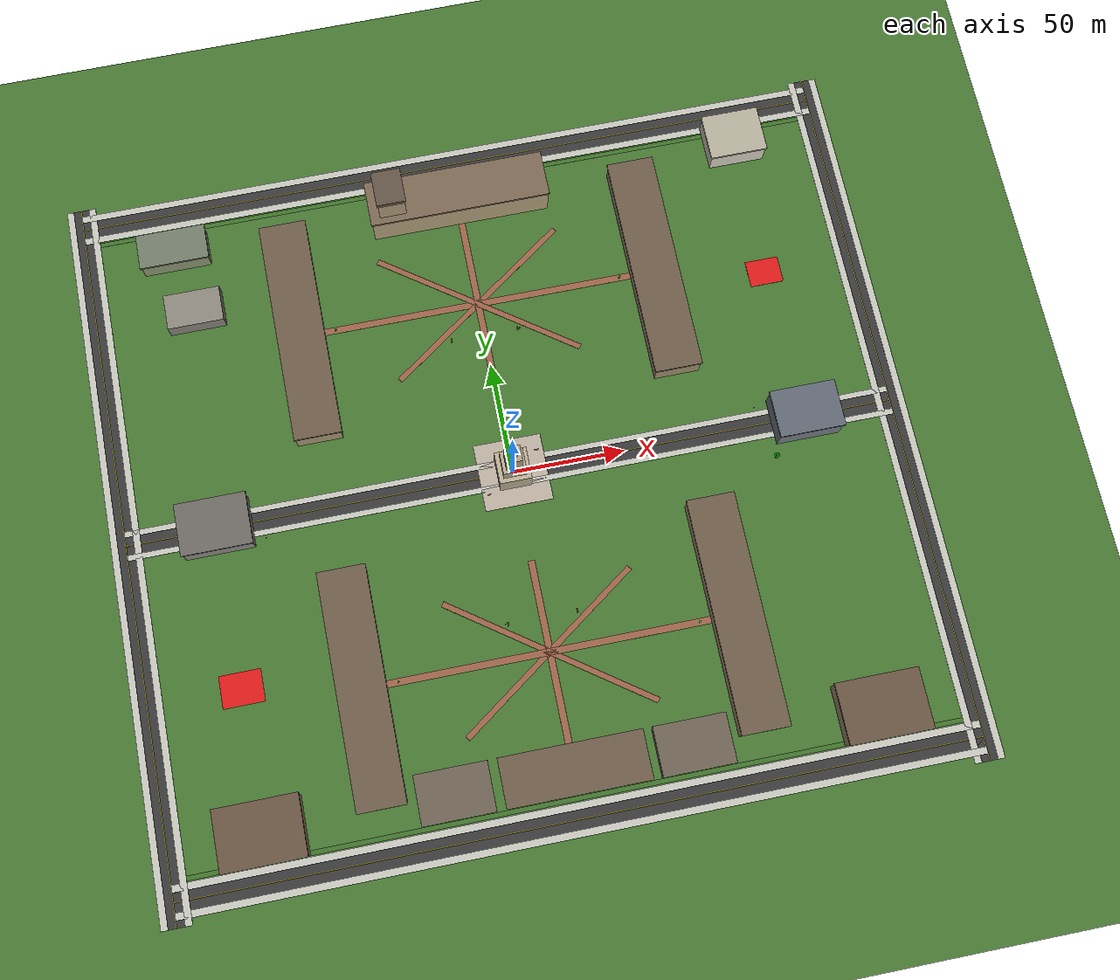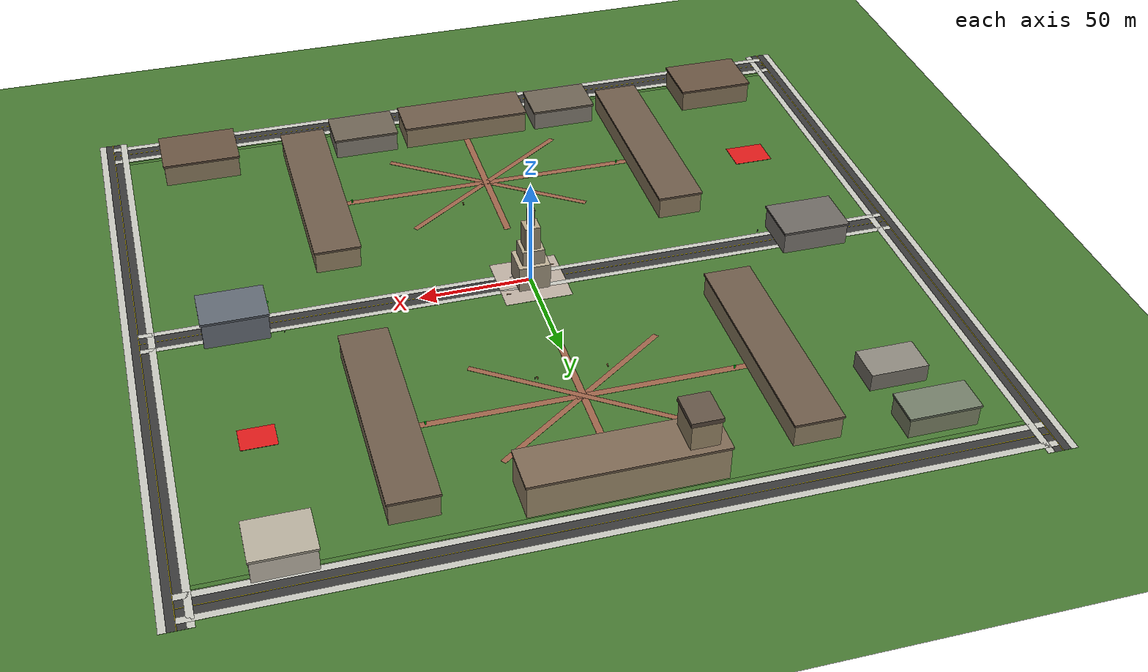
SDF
<sdf version="1.8">
 <world name="yale_campus">
  <plugin filename="gz-sim-physics-system" name="gz::sim::systems::Physics"/>
  <plugin filename="gz-sim-sensors-system" name="gz::sim::systems::Sensors">
   <render_engine>ogre2</render_engine>
  </plugin>
  <plugin filename="gz-sim-scene-broadcaster-system" name="gz::sim::systems::SceneBroadcaster"/>
  <plugin filename="gz-sim-user-commands-system" name="gz::sim::systems::UserCommands"/>
  <physics type="ode">
   <real_time_update_rate>1000.0</real_time_update_rate>
   <max_step_size>0.001</max_step_size>
   <real_time_factor>1</real_time_factor>
  </physics>
  <light type="directional" name="sun">
   <pose>0 0 100 0 0 0</pose>
   <diffuse>0.9 0.9 0.85 1</diffuse>
   <specular>0.3 0.3 0.3 1</specular>
   <attenuation>
    <range>1000</range>
    <constant>0.9</constant>
    <linear>0.01</linear>
    <quadratic>0.001</quadratic>
   </attenuation>
   <direction>-0.5 0.1 -0.9</direction>
  </light>
  <light type="directional" name="fill">
   <cast_shadows>false</cast_shadows>
   <pose>0 0 50 0 0 0</pose>
   <diffuse>0.35 0.38 0.45 1</diffuse>
   <specular>0 0 0 1</specular>
   <direction>0.5 -0.1 -0.5</direction>
  </light>
  <model name="ground_plane">
   <static>true</static>
   <link name="link">
    <collision name="c">
     <geometry><plane><normal>0 0 1</normal><size>500 500</size></plane></geometry>
     <surface><friction><ode><mu>0.8</mu><mu2>0.8</mu2></ode></friction></surface>
    </collision>
    <visual name="v">
     <geometry><plane><normal>0 0 1</normal><size>500 500</size></plane></geometry>
     <material><ambient>0.24 0.42 0.17 1</ambient><diffuse>0.27 0.46 0.19 1</diffuse></material>
    </visual>
   </link>
  </model>
  <model name="road_elm_st">
   <static>true</static>
   <link name="link">
    <collision name="c">
     <geometry><box><size>340 10 0.05</size></box></geometry>
     <surface>
      <friction><ode><mu>1.0</mu><mu2>1.0</mu2></ode></friction>
      <contact><ode><kp>1e8</kp><kd>10.0</kd></ode></contact>
     </surface>
    </collision>
    <visual name="v">
     <geometry><box><size>340 10 0.05</size></box></geometry>
     <material><ambient>0.20 0.20 0.20 1</ambient><diffuse>0.22 0.22 0.22 1</diffuse></material>
    </visual>
   </link>
   <pose>0 150 0.025 0 0 0</pose>
  </model>
  <model name="stripe_elm">
   <static>true</static>
   <link name="link">
    <visual name="v">
     <geometry><box><size>340 0.25 0.01</size></box></geometry>
     <material><ambient>0.95 0.85 0.0 1</ambient><diffuse>0.95 0.85 0.0 1</diffuse></material>
    </visual>
   </link>
   <pose>0 150 0.055 0 0 0</pose>
  </model>
  <model name="sw_elm_s">
   <static>true</static>
   <link name="link">
    <collision name="c">
     <geometry><box><size>340 3 0.08</size></box></geometry>
     <surface>
      <friction><ode><mu>1.0</mu><mu2>1.0</mu2></ode></friction>
      <contact><ode><kp>1e8</kp><kd>10.0</kd></ode></contact>
     </surface>
    </collision>
    <visual name="v">
     <geometry><box><size>340 3 0.08</size></box></geometry>
     <material><ambient>0.76 0.76 0.73 1</ambient><diffuse>0.76 0.76 0.73 1</diffuse></material>
    </visual>
   </link>
   <pose>0 144.5 0.04 0 0 0</pose>
  </model>
  <model name="sw_elm_n">
   <static>true</static>
   <link name="link">
    <collision name="c">
     <geometry><box><size>340 3 0.08</size></box></geometry>
     <surface>
      <friction><ode><mu>1.0</mu><mu2>1.0</mu2></ode></friction>
      <contact><ode><kp>1e8</kp><kd>10.0</kd></ode></contact>
     </surface>
    </collision>
    <visual name="v">
     <geometry><box><size>340 3 0.08</size></box></geometry>
     <material><ambient>0.76 0.76 0.73 1</ambient><diffuse>0.76 0.76 0.73 1</diffuse></material>
    </visual>
   </link>
   <pose>0 155.5 0.04 0 0 0</pose>
  </model>
  <model name="verge_elm_s">
   <static>true</static>
   <link name="link">
    <visual name="v">
     <geometry><box><size>340 2 0.01</size></box></geometry>
     <material><ambient>0.22 0.40 0.15 1</ambient><diffuse>0.25 0.44 0.17 1</diffuse></material>
    </visual>
   </link>
   <pose>0 141.5 0.005 0 0 0</pose>
  </model>
  <model name="road_chapel_st">
   <static>true</static>
   <link name="link">
    <collision name="c">
     <geometry><box><size>340 10 0.05</size></box></geometry>
     <surface>
      <friction><ode><mu>1.0</mu><mu2>1.0</mu2></ode></friction>
      <contact><ode><kp>1e8</kp><kd>10.0</kd></ode></contact>
     </surface>
    </collision>
    <visual name="v">
     <geometry><box><size>340 10 0.05</size></box></geometry>
     <material><ambient>0.20 0.20 0.20 1</ambient><diffuse>0.22 0.22 0.22 1</diffuse></material>
    </visual>
   </link>
   <pose>0 -150 0.025 0 0 0</pose>
  </model>
  <model name="stripe_chapel">
   <static>true</static>
   <link name="link">
    <visual name="v">
     <geometry><box><size>340 0.25 0.01</size></box></geometry>
     <material><ambient>0.95 0.85 0.0 1</ambient><diffuse>0.95 0.85 0.0 1</diffuse></material>
    </visual>
   </link>
   <pose>0 -150 0.055 0 0 0</pose>
  </model>
  <model name="sw_chapel_n">
   <static>true</static>
   <link name="link">
    <collision name="c">
     <geometry><box><size>340 3 0.08</size></box></geometry>
     <surface>
      <friction><ode><mu>1.0</mu><mu2>1.0</mu2></ode></friction>
      <contact><ode><kp>1e8</kp><kd>10.0</kd></ode></contact>
     </surface>
    </collision>
    <visual name="v">
     <geometry><box><size>340 3 0.08</size></box></geometry>
     <material><ambient>0.76 0.76 0.73 1</ambient><diffuse>0.76 0.76 0.73 1</diffuse></material>
    </visual>
   </link>
   <pose>0 -144.5 0.04 0 0 0</pose>
  </model>
  <model name="sw_chapel_s">
   <static>true</static>
   <link name="link">
    <collision name="c">
     <geometry><box><size>340 3 0.08</size></box></geometry>
     <surface>
      <friction><ode><mu>1.0</mu><mu2>1.0</mu2></ode></friction>
      <contact><ode><kp>1e8</kp><kd>10.0</kd></ode></contact>
     </surface>
    </collision>
    <visual name="v">
     <geometry><box><size>340 3 0.08</size></box></geometry>
     <material><ambient>0.76 0.76 0.73 1</ambient><diffuse>0.76 0.76 0.73 1</diffuse></material>
    </visual>
   </link>
   <pose>0 -155.5 0.04 0 0 0</pose>
  </model>
  <model name="verge_chapel_n">
   <static>true</static>
   <link name="link">
    <visual name="v">
     <geometry><box><size>340 2 0.01</size></box></geometry>
     <material><ambient>0.22 0.40 0.15 1</ambient><diffuse>0.25 0.44 0.17 1</diffuse></material>
    </visual>
   </link>
   <pose>0 -141.5 0.005 0 0 0</pose>
  </model>
  <model name="road_york_st">
   <static>true</static>
   <link name="link">
    <collision name="c">
     <geometry><box><size>9 320 0.05</size></box></geometry>
     <surface>
      <friction><ode><mu>1.0</mu><mu2>1.0</mu2></ode></friction>
      <contact><ode><kp>1e8</kp><kd>10.0</kd></ode></contact>
     </surface>
    </collision>
    <visual name="v">
     <geometry><box><size>9 320 0.05</size></box></geometry>
     <material><ambient>0.20 0.20 0.20 1</ambient><diffuse>0.22 0.22 0.22 1</diffuse></material>
    </visual>
   </link>
   <pose>-170 0 0.025 0 0 0</pose>
  </model>
  <model name="stripe_york">
   <static>true</static>
   <link name="link">
    <visual name="v">
     <geometry><box><size>0.25 320 0.01</size></box></geometry>
     <material><ambient>0.95 0.85 0.0 1</ambient><diffuse>0.95 0.85 0.0 1</diffuse></material>
    </visual>
   </link>
   <pose>-170 0 0.055 0 0 0</pose>
  </model>
  <model name="sw_york_e">
   <static>true</static>
   <link name="link">
    <collision name="c">
     <geometry><box><size>3 320 0.08</size></box></geometry>
     <surface>
      <friction><ode><mu>1.0</mu><mu2>1.0</mu2></ode></friction>
      <contact><ode><kp>1e8</kp><kd>10.0</kd></ode></contact>
     </surface>
    </collision>
    <visual name="v">
     <geometry><box><size>3 320 0.08</size></box></geometry>
     <material><ambient>0.76 0.76 0.73 1</ambient><diffuse>0.76 0.76 0.73 1</diffuse></material>
    </visual>
   </link>
   <pose>-165 0 0.04 0 0 0</pose>
  </model>
  <model name="sw_york_w">
   <static>true</static>
   <link name="link">
    <collision name="c">
     <geometry><box><size>3 320 0.08</size></box></geometry>
     <surface>
      <friction><ode><mu>1.0</mu><mu2>1.0</mu2></ode></friction>
      <contact><ode><kp>1e8</kp><kd>10.0</kd></ode></contact>
     </surface>
    </collision>
    <visual name="v">
     <geometry><box><size>3 320 0.08</size></box></geometry>
     <material><ambient>0.76 0.76 0.73 1</ambient><diffuse>0.76 0.76 0.73 1</diffuse></material>
    </visual>
   </link>
   <pose>-175 0 0.04 0 0 0</pose>
  </model>
  <model name="road_grove_st">
   <static>true</static>
   <link name="link">
    <collision name="c">
     <geometry><box><size>9 320 0.05</size></box></geometry>
     <surface>
      <friction><ode><mu>1.0</mu><mu2>1.0</mu2></ode></friction>
      <contact><ode><kp>1e8</kp><kd>10.0</kd></ode></contact>
     </surface>
    </collision>
    <visual name="v">
     <geometry><box><size>9 320 0.05</size></box></geometry>
     <material><ambient>0.20 0.20 0.20 1</ambient><diffuse>0.22 0.22 0.22 1</diffuse></material>
    </visual>
   </link>
   <pose>170 0 0.025 0 0 0</pose>
  </model>
  <model name="stripe_grove">
   <static>true</static>
   <link name="link">
    <visual name="v">
     <geometry><box><size>0.25 320 0.01</size></box></geometry>
     <material><ambient>0.95 0.85 0.0 1</ambient><diffuse>0.95 0.85 0.0 1</diffuse></material>
    </visual>
   </link>
   <pose>170 0 0.055 0 0 0</pose>
  </model>
  <model name="sw_grove_w">
   <static>true</static>
   <link name="link">
    <collision name="c">
     <geometry><box><size>3 320 0.08</size></box></geometry>
     <surface>
      <friction><ode><mu>1.0</mu><mu2>1.0</mu2></ode></friction>
      <contact><ode><kp>1e8</kp><kd>10.0</kd></ode></contact>
     </surface>
    </collision>
    <visual name="v">
     <geometry><box><size>3 320 0.08</size></box></geometry>
     <material><ambient>0.76 0.76 0.73 1</ambient><diffuse>0.76 0.76 0.73 1</diffuse></material>
    </visual>
   </link>
   <pose>165 0 0.04 0 0 0</pose>
  </model>
  <model name="sw_grove_e">
   <static>true</static>
   <link name="link">
    <collision name="c">
     <geometry><box><size>3 320 0.08</size></box></geometry>
     <surface>
      <friction><ode><mu>1.0</mu><mu2>1.0</mu2></ode></friction>
      <contact><ode><kp>1e8</kp><kd>10.0</kd></ode></contact>
     </surface>
    </collision>
    <visual name="v">
     <geometry><box><size>3 320 0.08</size></box></geometry>
     <material><ambient>0.76 0.76 0.73 1</ambient><diffuse>0.76 0.76 0.73 1</diffuse></material>
    </visual>
   </link>
   <pose>175 0 0.04 0 0 0</pose>
  </model>
  <model name="road_cross_campus">
   <static>true</static>
   <link name="link">
    <collision name="c">
     <geometry><box><size>340 8 0.05</size></box></geometry>
     <surface>
      <friction><ode><mu>1.0</mu><mu2>1.0</mu2></ode></friction>
      <contact><ode><kp>1e8</kp><kd>10.0</kd></ode></contact>
     </surface>
    </collision>
    <visual name="v">
     <geometry><box><size>340 8 0.05</size></box></geometry>
     <material><ambient>0.20 0.20 0.20 1</ambient><diffuse>0.22 0.22 0.22 1</diffuse></material>
    </visual>
   </link>
   <pose>0 0 0.025 0 0 0</pose>
  </model>
  <model name="stripe_cross">
   <static>true</static>
   <link name="link">
    <visual name="v">
     <geometry><box><size>340 0.25 0.01</size></box></geometry>
     <material><ambient>0.95 0.85 0.0 1</ambient><diffuse>0.95 0.85 0.0 1</diffuse></material>
    </visual>
   </link>
   <pose>0 0 0.055 0 0 0</pose>
  </model>
  <model name="sw_cross_n">
   <static>true</static>
   <link name="link">
    <collision name="c">
     <geometry><box><size>340 2.5 0.08</size></box></geometry>
     <surface>
      <friction><ode><mu>1.0</mu><mu2>1.0</mu2></ode></friction>
      <contact><ode><kp>1e8</kp><kd>10.0</kd></ode></contact>
     </surface>
    </collision>
    <visual name="v">
     <geometry><box><size>340 2.5 0.08</size></box></geometry>
     <material><ambient>0.76 0.76 0.73 1</ambient><diffuse>0.76 0.76 0.73 1</diffuse></material>
    </visual>
   </link>
   <pose>0 5.25 0.04 0 0 0</pose>
  </model>
  <model name="sw_cross_s">
   <static>true</static>
   <link name="link">
    <collision name="c">
     <geometry><box><size>340 2.5 0.08</size></box></geometry>
     <surface>
      <friction><ode><mu>1.0</mu><mu2>1.0</mu2></ode></friction>
      <contact><ode><kp>1e8</kp><kd>10.0</kd></ode></contact>
     </surface>
    </collision>
    <visual name="v">
     <geometry><box><size>340 2.5 0.08</size></box></geometry>
     <material><ambient>0.76 0.76 0.73 1</ambient><diffuse>0.76 0.76 0.73 1</diffuse></material>
    </visual>
   </link>
   <pose>0 -5.25 0.04 0 0 0</pose>
  </model>
  <model name="path_nq_ew">
   <static>true</static>
   <link name="link">
    <collision name="c">
     <geometry><box><size>140 3 0.06</size></box></geometry>
     <surface>
      <friction><ode><mu>1.0</mu><mu2>1.0</mu2></ode></friction>
      <contact><ode><kp>1e8</kp><kd>10.0</kd></ode></contact>
     </surface>
    </collision>
    <visual name="v">
     <geometry><box><size>140 3 0.06</size></box></geometry>
     <material><ambient>0.55 0.35 0.25 1</ambient><diffuse>0.60 0.38 0.28 1</diffuse></material>
    </visual>
   </link>
   <pose>0 80 0.03 0 0 0</pose>
  </model>
  <model name="path_nq_ns">
   <static>true</static>
   <link name="link">
    <collision name="c">
     <geometry><box><size>3 80 0.06</size></box></geometry>
     <surface>
      <friction><ode><mu>1.0</mu><mu2>1.0</mu2></ode></friction>
      <contact><ode><kp>1e8</kp><kd>10.0</kd></ode></contact>
     </surface>
    </collision>
    <visual name="v">
     <geometry><box><size>3 80 0.06</size></box></geometry>
     <material><ambient>0.55 0.35 0.25 1</ambient><diffuse>0.60 0.38 0.28 1</diffuse></material>
    </visual>
   </link>
   <pose>0 80 0.03 0 0 0</pose>
  </model>
  <model name="path_nq_diag1">
   <static>true</static>
   <link name="link">
    <collision name="c">
     <geometry><box><size>100 2.5 0.06</size></box></geometry>
     <surface>
      <friction><ode><mu>1.0</mu><mu2>1.0</mu2></ode></friction>
      <contact><ode><kp>1e8</kp><kd>10.0</kd></ode></contact>
     </surface>
    </collision>
    <visual name="v">
     <geometry><box><size>100 2.5 0.06</size></box></geometry>
     <material><ambient>0.55 0.35 0.25 1</ambient><diffuse>0.60 0.38 0.28 1</diffuse></material>
    </visual>
   </link>
   <pose>0 80 0.03 0 0 0.615</pose>
  </model>
  <model name="path_nq_diag2">
   <static>true</static>
   <link name="link">
    <collision name="c">
     <geometry><box><size>100 2.5 0.06</size></box></geometry>
     <surface>
      <friction><ode><mu>1.0</mu><mu2>1.0</mu2></ode></friction>
      <contact><ode><kp>1e8</kp><kd>10.0</kd></ode></contact>
     </surface>
    </collision>
    <visual name="v">
     <geometry><box><size>100 2.5 0.06</size></box></geometry>
     <material><ambient>0.55 0.35 0.25 1</ambient><diffuse>0.60 0.38 0.28 1</diffuse></material>
    </visual>
   </link>
   <pose>0 80 0.03 0 0 -0.615</pose>
  </model>
  <model name="path_sq_ew">
   <static>true</static>
   <link name="link">
    <collision name="c">
     <geometry><box><size>140 3 0.06</size></box></geometry>
     <surface>
      <friction><ode><mu>1.0</mu><mu2>1.0</mu2></ode></friction>
      <contact><ode><kp>1e8</kp><kd>10.0</kd></ode></contact>
     </surface>
    </collision>
    <visual name="v">
     <geometry><box><size>140 3 0.06</size></box></geometry>
     <material><ambient>0.55 0.35 0.25 1</ambient><diffuse>0.60 0.38 0.28 1</diffuse></material>
    </visual>
   </link>
   <pose>0 -80 0.03 0 0 0</pose>
  </model>
  <model name="path_sq_ns">
   <static>true</static>
   <link name="link">
    <collision name="c">
     <geometry><box><size>3 80 0.06</size></box></geometry>
     <surface>
      <friction><ode><mu>1.0</mu><mu2>1.0</mu2></ode></friction>
      <contact><ode><kp>1e8</kp><kd>10.0</kd></ode></contact>
     </surface>
    </collision>
    <visual name="v">
     <geometry><box><size>3 80 0.06</size></box></geometry>
     <material><ambient>0.55 0.35 0.25 1</ambient><diffuse>0.60 0.38 0.28 1</diffuse></material>
    </visual>
   </link>
   <pose>0 -80 0.03 0 0 0</pose>
  </model>
  <model name="path_sq_diag1">
   <static>true</static>
   <link name="link">
    <collision name="c">
     <geometry><box><size>100 2.5 0.06</size></box></geometry>
     <surface>
      <friction><ode><mu>1.0</mu><mu2>1.0</mu2></ode></friction>
      <contact><ode><kp>1e8</kp><kd>10.0</kd></ode></contact>
     </surface>
    </collision>
    <visual name="v">
     <geometry><box><size>100 2.5 0.06</size></box></geometry>
     <material><ambient>0.55 0.35 0.25 1</ambient><diffuse>0.60 0.38 0.28 1</diffuse></material>
    </visual>
   </link>
   <pose>0 -80 0.03 0 0 0.615</pose>
  </model>
  <model name="path_sq_diag2">
   <static>true</static>
   <link name="link">
    <collision name="c">
     <geometry><box><size>100 2.5 0.06</size></box></geometry>
     <surface>
      <friction><ode><mu>1.0</mu><mu2>1.0</mu2></ode></friction>
      <contact><ode><kp>1e8</kp><kd>10.0</kd></ode></contact>
     </surface>
    </collision>
    <visual name="v">
     <geometry><box><size>100 2.5 0.06</size></box></geometry>
     <material><ambient>0.55 0.35 0.25 1</ambient><diffuse>0.60 0.38 0.28 1</diffuse></material>
    </visual>
   </link>
   <pose>0 -80 0.03 0 0 -0.615</pose>
  </model>
  <model name="chapel_tower">
   <static>true</static>
   <link name="link">
    <collision name="base_c">
     <geometry><box><size>14 14 12</size></box></geometry>
     <surface>
      <friction><ode><mu>1.0</mu><mu2>1.0</mu2></ode></friction>
      <contact><ode><kp>1e8</kp><kd>10.0</kd></ode></contact>
     </surface>
    </collision>
    <visual name="base">
     <geometry><box><size>14 14 12</size></box></geometry>
     <material><ambient>0.70 0.65 0.55 1</ambient><diffuse>0.72 0.67 0.57 1</diffuse></material>
    </visual>
    <visual name="tier2">
     <pose>0 0 9 0 0 0</pose>
     <geometry><box><size>10 10 8</size></box></geometry>
     <material><ambient>0.68 0.63 0.53 1</ambient><diffuse>0.70 0.65 0.55 1</diffuse></material>
    </visual>
    <visual name="tower">
     <pose>0 0 18 0 0 0</pose>
     <geometry><box><size>7 7 12</size></box></geometry>
     <material><ambient>0.66 0.60 0.48 1</ambient><diffuse>0.68 0.62 0.50 1</diffuse></material>
    </visual>
    <visual name="spire">
     <pose>0 0 28 0 0 0</pose>
     <geometry><box><size>3 3 8</size></box></geometry>
     <material><ambient>0.45 0.40 0.35 1</ambient><diffuse>0.48 0.43 0.37 1</diffuse></material>
    </visual>
    <visual name="peak">
     <pose>0 0 34 0 0 0</pose>
     <geometry><box><size>1 1 4</size></box></geometry>
     <material><ambient>0.30 0.25 0.20 1</ambient><diffuse>0.32 0.27 0.22 1</diffuse></material>
    </visual>
   </link>
   <pose>0 0 6 0 0 0</pose>
  </model>
  <model name="chapel_plaza">
   <static>true</static>
   <link name="link">
    <collision name="c">
     <geometry><box><size>30 30 0.08</size></box></geometry>
     <surface>
      <friction><ode><mu>1.0</mu><mu2>1.0</mu2></ode></friction>
      <contact><ode><kp>1e8</kp><kd>10.0</kd></ode></contact>
     </surface>
    </collision>
    <visual name="v">
     <geometry><box><size>30 30 0.08</size></box></geometry>
     <material><ambient>0.70 0.65 0.60 1</ambient><diffuse>0.72 0.67 0.62 1</diffuse></material>
    </visual>
   </link>
   <pose>0 0 0.04 0 0 0</pose>
  </model>
  <model name="sterling_library">
   <static>true</static>
   <link name="link">
    <collision name="c">
     <geometry><box><size>80 20 15</size></box></geometry>
     <surface>
      <friction><ode><mu>1.0</mu><mu2>1.0</mu2></ode></friction>
      <contact><ode><kp>1e8</kp><kd>10.0</kd></ode></contact>
     </surface>
    </collision>
    <visual name="walls">
     <geometry><box><size>80 20 15</size></box></geometry>
     <material><ambient>0.70 0.62 0.48 1</ambient><diffuse>0.72 0.64 0.50 1</diffuse></material>
    </visual>
    <visual name="roof">
     <pose>0 0 8 0 0 0</pose>
     <geometry><box><size>81 21 1</size></box></geometry>
     <material><ambient>0.45 0.38 0.30 1</ambient><diffuse>0.48 0.40 0.32 1</diffuse></material>
    </visual>
    <visual name="sterling_tower">
     <pose>-30 0 10 0 0 0</pose>
     <geometry><box><size>12 15 20</size></box></geometry>
     <material><ambient>0.68 0.60 0.46 1</ambient><diffuse>0.70 0.62 0.48 1</diffuse></material>
    </visual>
    <visual name="sterling_tower_roof">
     <pose>-30 0 21 0 0 0</pose>
     <geometry><box><size>13 16 2</size></box></geometry>
     <material><ambient>0.35 0.30 0.25 1</ambient><diffuse>0.38 0.32 0.27 1</diffuse></material>
    </visual>
   </link>
   <pose>0 130 7.5 0 0 0</pose>
  </model>
  <model name="branford_college">
   <static>true</static>
   <link name="link">
    <collision name="c">
     <geometry><box><size>20 100 10</size></box></geometry>
     <surface>
      <friction><ode><mu>1.0</mu><mu2>1.0</mu2></ode></friction>
      <contact><ode><kp>1e8</kp><kd>10.0</kd></ode></contact>
     </surface>
    </collision>
    <visual name="walls">
     <geometry><box><size>20 100 10</size></box></geometry>
     <material><ambient>0.65 0.58 0.45 1</ambient><diffuse>0.67 0.60 0.47 1</diffuse></material>
    </visual>
    <visual name="roof">
     <pose>0 0 5.5 0 0 0</pose>
     <geometry><box><size>21 101 1</size></box></geometry>
     <material><ambient>0.40 0.33 0.26 1</ambient><diffuse>0.42 0.35 0.28 1</diffuse></material>
    </visual>
   </link>
   <pose>-80 80 5 0 0 0</pose>
  </model>
  <model name="saybrook_college">
   <static>true</static>
   <link name="link">
    <collision name="c">
     <geometry><box><size>20 100 10</size></box></geometry>
     <surface>
      <friction><ode><mu>1.0</mu><mu2>1.0</mu2></ode></friction>
      <contact><ode><kp>1e8</kp><kd>10.0</kd></ode></contact>
     </surface>
    </collision>
    <visual name="walls">
     <geometry><box><size>20 100 10</size></box></geometry>
     <material><ambient>0.62 0.55 0.43 1</ambient><diffuse>0.64 0.57 0.45 1</diffuse></material>
    </visual>
    <visual name="roof">
     <pose>0 0 5.5 0 0 0</pose>
     <geometry><box><size>21 101 1</size></box></geometry>
     <material><ambient>0.40 0.33 0.26 1</ambient><diffuse>0.42 0.35 0.28 1</diffuse></material>
    </visual>
   </link>
   <pose>80 80 5 0 0 0</pose>
  </model>
  <model name="beinecke_library">
   <static>true</static>
   <link name="link">
    <collision name="c">
     <geometry><box><size>25 20 10</size></box></geometry>
     <surface>
      <friction><ode><mu>1.0</mu><mu2>1.0</mu2></ode></friction>
      <contact><ode><kp>1e8</kp><kd>10.0</kd></ode></contact>
     </surface>
    </collision>
    <visual name="walls">
     <geometry><box><size>25 20 10</size></box></geometry>
     <material><ambient>0.85 0.82 0.75 1</ambient><diffuse>0.87 0.84 0.77 1</diffuse></material>
    </visual>
    <visual name="roof">
     <pose>0 0 5.5 0 0 0</pose>
     <geometry><box><size>26 21 1</size></box></geometry>
     <material><ambient>0.68 0.65 0.58 1</ambient><diffuse>0.70 0.67 0.60 1</diffuse></material>
    </visual>
   </link>
   <pose>130 135 5 0 0 0</pose>
  </model>
  <model name="kroon_hall">
   <static>true</static>
   <link name="link">
    <collision name="c">
     <geometry><box><size>30 15 9</size></box></geometry>
     <surface>
      <friction><ode><mu>1.0</mu><mu2>1.0</mu2></ode></friction>
      <contact><ode><kp>1e8</kp><kd>10.0</kd></ode></contact>
     </surface>
    </collision>
    <visual name="walls">
     <geometry><box><size>30 15 9</size></box></geometry>
     <material><ambient>0.55 0.58 0.45 1</ambient><diffuse>0.57 0.60 0.47 1</diffuse></material>
    </visual>
    <visual name="roof">
     <pose>0 0 5 0 0 0</pose>
     <geometry><box><size>31 16 1</size></box></geometry>
     <material><ambient>0.42 0.46 0.38 1</ambient><diffuse>0.44 0.48 0.40 1</diffuse></material>
    </visual>
   </link>
   <pose>-130 130 4.5 0 0 0</pose>
  </model>
  <model name="dunham_lab">
   <static>true</static>
   <link name="link">
    <collision name="c">
     <geometry><box><size>25 16 8</size></box></geometry>
     <surface>
      <friction><ode><mu>1.0</mu><mu2>1.0</mu2></ode></friction>
      <contact><ode><kp>1e8</kp><kd>10.0</kd></ode></contact>
     </surface>
    </collision>
    <visual name="walls">
     <geometry><box><size>25 16 8</size></box></geometry>
     <material><ambient>0.52 0.50 0.46 1</ambient><diffuse>0.54 0.52 0.48 1</diffuse></material>
    </visual>
   </link>
   <pose>-125 100 4 0 0 0</pose>
  </model>
  <model name="davenport_college">
   <static>true</static>
   <link name="link">
    <collision name="c">
     <geometry><box><size>20 100 10</size></box></geometry>
     <surface>
      <friction><ode><mu>1.0</mu><mu2>1.0</mu2></ode></friction>
      <contact><ode><kp>1e8</kp><kd>10.0</kd></ode></contact>
     </surface>
    </collision>
    <visual name="walls">
     <geometry><box><size>20 100 10</size></box></geometry>
     <material><ambient>0.63 0.55 0.42 1</ambient><diffuse>0.65 0.57 0.44 1</diffuse></material>
    </visual>
    <visual name="roof">
     <pose>0 0 5.5 0 0 0</pose>
     <geometry><box><size>21 101 1</size></box></geometry>
     <material><ambient>0.40 0.33 0.26 1</ambient><diffuse>0.42 0.35 0.28 1</diffuse></material>
    </visual>
   </link>
   <pose>-80 -80 5 0 0 0</pose>
  </model>
  <model name="pierson_college">
   <static>true</static>
   <link name="link">
    <collision name="c">
     <geometry><box><size>20 100 10</size></box></geometry>
     <surface>
      <friction><ode><mu>1.0</mu><mu2>1.0</mu2></ode></friction>
      <contact><ode><kp>1e8</kp><kd>10.0</kd></ode></contact>
     </surface>
    </collision>
    <visual name="walls">
     <geometry><box><size>20 100 10</size></box></geometry>
     <material><ambient>0.66 0.58 0.44 1</ambient><diffuse>0.68 0.60 0.46 1</diffuse></material>
    </visual>
    <visual name="roof">
     <pose>0 0 5.5 0 0 0</pose>
     <geometry><box><size>21 101 1</size></box></geometry>
     <material><ambient>0.40 0.33 0.26 1</ambient><diffuse>0.42 0.35 0.28 1</diffuse></material>
    </visual>
   </link>
   <pose>80 -80 5 0 0 0</pose>
  </model>
  <model name="berkeley_college">
   <static>true</static>
   <link name="link">
    <collision name="c">
     <geometry><box><size>60 20 10</size></box></geometry>
     <surface>
      <friction><ode><mu>1.0</mu><mu2>1.0</mu2></ode></friction>
      <contact><ode><kp>1e8</kp><kd>10.0</kd></ode></contact>
     </surface>
    </collision>
    <visual name="walls">
     <geometry><box><size>60 20 10</size></box></geometry>
     <material><ambient>0.64 0.56 0.43 1</ambient><diffuse>0.66 0.58 0.45 1</diffuse></material>
    </visual>
    <visual name="roof">
     <pose>0 0 5.5 0 0 0</pose>
     <geometry><box><size>61 21 1</size></box></geometry>
     <material><ambient>0.40 0.33 0.26 1</ambient><diffuse>0.42 0.35 0.28 1</diffuse></material>
    </visual>
   </link>
   <pose>0 -130 5 0 0 0</pose>
  </model>
  <model name="silliman_college">
   <static>true</static>
   <link name="link">
    <collision name="c">
     <geometry><box><size>35 25 10</size></box></geometry>
     <surface>
      <friction><ode><mu>1.0</mu><mu2>1.0</mu2></ode></friction>
      <contact><ode><kp>1e8</kp><kd>10.0</kd></ode></contact>
     </surface>
    </collision>
    <visual name="walls">
     <geometry><box><size>35 25 10</size></box></geometry>
     <material><ambient>0.60 0.52 0.40 1</ambient><diffuse>0.62 0.54 0.42 1</diffuse></material>
    </visual>
    <visual name="roof">
     <pose>0 0 5.5 0 0 0</pose>
     <geometry><box><size>36 26 1</size></box></geometry>
     <material><ambient>0.38 0.30 0.23 1</ambient><diffuse>0.40 0.32 0.25 1</diffuse></material>
    </visual>
   </link>
   <pose>-130 -130 5 0 0 0</pose>
  </model>
  <model name="ezra_stiles_college">
   <static>true</static>
   <link name="link">
    <collision name="c">
     <geometry><box><size>30 20 9</size></box></geometry>
     <surface>
      <friction><ode><mu>1.0</mu><mu2>1.0</mu2></ode></friction>
      <contact><ode><kp>1e8</kp><kd>10.0</kd></ode></contact>
     </surface>
    </collision>
    <visual name="walls">
     <geometry><box><size>30 20 9</size></box></geometry>
     <material><ambient>0.58 0.55 0.50 1</ambient><diffuse>0.60 0.57 0.52 1</diffuse></material>
    </visual>
    <visual name="roof">
     <pose>0 0 5 0 0 0</pose>
     <geometry><box><size>31 21 1</size></box></geometry>
     <material><ambient>0.40 0.36 0.30 1</ambient><diffuse>0.42 0.38 0.32 1</diffuse></material>
    </visual>
   </link>
   <pose>-50 -130 4.5 0 0 0</pose>
  </model>
  <model name="morse_college">
   <static>true</static>
   <link name="link">
    <collision name="c">
     <geometry><box><size>30 20 9</size></box></geometry>
     <surface>
      <friction><ode><mu>1.0</mu><mu2>1.0</mu2></ode></friction>
      <contact><ode><kp>1e8</kp><kd>10.0</kd></ode></contact>
     </surface>
    </collision>
    <visual name="walls">
     <geometry><box><size>30 20 9</size></box></geometry>
     <material><ambient>0.58 0.55 0.50 1</ambient><diffuse>0.60 0.57 0.52 1</diffuse></material>
    </visual>
    <visual name="roof">
     <pose>0 0 5 0 0 0</pose>
     <geometry><box><size>31 21 1</size></box></geometry>
     <material><ambient>0.40 0.36 0.30 1</ambient><diffuse>0.42 0.38 0.32 1</diffuse></material>
    </visual>
   </link>
   <pose>50 -130 4.5 0 0 0</pose>
  </model>
  <model name="timothy_dwight">
   <static>true</static>
   <link name="link">
    <collision name="c">
     <geometry><box><size>35 25 10</size></box></geometry>
     <surface>
      <friction><ode><mu>1.0</mu><mu2>1.0</mu2></ode></friction>
      <contact><ode><kp>1e8</kp><kd>10.0</kd></ode></contact>
     </surface>
    </collision>
    <visual name="walls">
     <geometry><box><size>35 25 10</size></box></geometry>
     <material><ambient>0.62 0.55 0.42 1</ambient><diffuse>0.64 0.57 0.44 1</diffuse></material>
    </visual>
    <visual name="roof">
     <pose>0 0 5.5 0 0 0</pose>
     <geometry><box><size>36 26 1</size></box></geometry>
     <material><ambient>0.38 0.30 0.23 1</ambient><diffuse>0.40 0.32 0.25 1</diffuse></material>
    </visual>
   </link>
   <pose>130 -130 5 0 0 0</pose>
  </model>
  <model name="becton_engineering">
   <static>true</static>
   <link name="link">
    <collision name="c">
     <geometry><box><size>28 20 12</size></box></geometry>
     <surface>
      <friction><ode><mu>1.0</mu><mu2>1.0</mu2></ode></friction>
      <contact><ode><kp>1e8</kp><kd>10.0</kd></ode></contact>
     </surface>
    </collision>
    <visual name="walls">
     <geometry><box><size>28 20 12</size></box></geometry>
     <material><ambient>0.45 0.48 0.52 1</ambient><diffuse>0.47 0.50 0.54 1</diffuse></material>
    </visual>
    <visual name="roof">
     <pose>0 0 6.5 0 0 0</pose>
     <geometry><box><size>29 21 1</size></box></geometry>
     <material><ambient>0.35 0.38 0.42 1</ambient><diffuse>0.37 0.40 0.44 1</diffuse></material>
    </visual>
   </link>
   <pose>130 0 6 0 0 0</pose>
  </model>
  <model name="watson_center">
   <static>true</static>
   <link name="link">
    <collision name="c">
     <geometry><box><size>30 22 10</size></box></geometry>
     <surface>
      <friction><ode><mu>1.0</mu><mu2>1.0</mu2></ode></friction>
      <contact><ode><kp>1e8</kp><kd>10.0</kd></ode></contact>
     </surface>
    </collision>
    <visual name="walls">
     <geometry><box><size>30 22 10</size></box></geometry>
     <material><ambient>0.55 0.53 0.50 1</ambient><diffuse>0.57 0.55 0.52 1</diffuse></material>
    </visual>
    <visual name="roof">
     <pose>0 0 5.5 0 0 0</pose>
     <geometry><box><size>31 23 1</size></box></geometry>
     <material><ambient>0.40 0.38 0.36 1</ambient><diffuse>0.42 0.40 0.38 1</diffuse></material>
    </visual>
   </link>
   <pose>-130 0 5 0 0 0</pose>
  </model>
  <model name="delivery_A">
   <static>true</static>
   <link name="link">
    <collision name="c">
     <geometry><cylinder><radius>0.4</radius><length>1.5</length></cylinder></geometry>
     <surface>
      <friction><ode><mu>1.0</mu><mu2>1.0</mu2></ode></friction>
      <contact><ode><kp>1e8</kp><kd>10.0</kd></ode></contact>
     </surface>
    </collision>
    <visual name="pole">
     <geometry><cylinder><radius>0.4</radius><length>1.5</length></cylinder></geometry>
     <material><ambient>0.0 0.85 0.1 1</ambient><diffuse>0.0 0.85 0.1 1</diffuse></material>
    </visual>
    <visual name="platform">
     <pose>0 0 -0.8 0 0 0</pose>
     <geometry><cylinder><radius>1.2</radius><length>0.1</length></cylinder></geometry>
     <material><ambient>0.0 0.5 0.05 1</ambient><diffuse>0.0 0.5 0.05 1</diffuse></material>
    </visual>
   </link>
   <pose>-65 80 0.75 0 0 0</pose>
  </model>
  <model name="delivery_B">
   <static>true</static>
   <link name="link">
    <collision name="c">
     <geometry><cylinder><radius>0.4</radius><length>1.5</length></cylinder></geometry>
     <surface>
      <friction><ode><mu>1.0</mu><mu2>1.0</mu2></ode></friction>
      <contact><ode><kp>1e8</kp><kd>10.0</kd></ode></contact>
     </surface>
    </collision>
    <visual name="pole">
     <geometry><cylinder><radius>0.4</radius><length>1.5</length></cylinder></geometry>
     <material><ambient>0.0 0.85 0.1 1</ambient><diffuse>0.0 0.85 0.1 1</diffuse></material>
    </visual>
    <visual name="platform">
     <pose>0 0 -0.8 0 0 0</pose>
     <geometry><cylinder><radius>1.2</radius><length>0.1</length></cylinder></geometry>
     <material><ambient>0.0 0.5 0.05 1</ambient><diffuse>0.0 0.5 0.05 1</diffuse></material>
    </visual>
   </link>
   <pose>65 80 0.75 0 0 0</pose>
  </model>
  <model name="delivery_C">
   <static>true</static>
   <link name="link">
    <collision name="c">
     <geometry><cylinder><radius>0.4</radius><length>1.5</length></cylinder></geometry>
     <surface>
      <friction><ode><mu>1.0</mu><mu2>1.0</mu2></ode></friction>
      <contact><ode><kp>1e8</kp><kd>10.0</kd></ode></contact>
     </surface>
    </collision>
    <visual name="pole">
     <geometry><cylinder><radius>0.4</radius><length>1.5</length></cylinder></geometry>
     <material><ambient>0.0 0.85 0.1 1</ambient><diffuse>0.0 0.85 0.1 1</diffuse></material>
    </visual>
    <visual name="platform">
     <pose>0 0 -0.8 0 0 0</pose>
     <geometry><cylinder><radius>1.2</radius><length>0.1</length></cylinder></geometry>
     <material><ambient>0.0 0.5 0.05 1</ambient><diffuse>0.0 0.5 0.05 1</diffuse></material>
    </visual>
   </link>
   <pose>-65 -80 0.75 0 0 0</pose>
  </model>
  <model name="delivery_D">
   <static>true</static>
   <link name="link">
    <collision name="c">
     <geometry><cylinder><radius>0.4</radius><length>1.5</length></cylinder></geometry>
     <surface>
      <friction><ode><mu>1.0</mu><mu2>1.0</mu2></ode></friction>
      <contact><ode><kp>1e8</kp><kd>10.0</kd></ode></contact>
     </surface>
    </collision>
    <visual name="pole">
     <geometry><cylinder><radius>0.4</radius><length>1.5</length></cylinder></geometry>
     <material><ambient>0.0 0.85 0.1 1</ambient><diffuse>0.0 0.85 0.1 1</diffuse></material>
    </visual>
    <visual name="platform">
     <pose>0 0 -0.8 0 0 0</pose>
     <geometry><cylinder><radius>1.2</radius><length>0.1</length></cylinder></geometry>
     <material><ambient>0.0 0.5 0.05 1</ambient><diffuse>0.0 0.5 0.05 1</diffuse></material>
    </visual>
   </link>
   <pose>65 -80 0.75 0 0 0</pose>
  </model>
  <model name="delivery_E">
   <static>true</static>
   <link name="link">
    <collision name="c">
     <geometry><cylinder><radius>0.4</radius><length>1.5</length></cylinder></geometry>
     <surface>
      <friction><ode><mu>1.0</mu><mu2>1.0</mu2></ode></friction>
      <contact><ode><kp>1e8</kp><kd>10.0</kd></ode></contact>
     </surface>
    </collision>
    <visual name="pole">
     <geometry><cylinder><radius>0.4</radius><length>1.5</length></cylinder></geometry>
     <material><ambient>0.0 0.85 0.1 1</ambient><diffuse>0.0 0.85 0.1 1</diffuse></material>
    </visual>
    <visual name="platform">
     <pose>0 0 -0.8 0 0 0</pose>
     <geometry><cylinder><radius>1.2</radius><length>0.1</length></cylinder></geometry>
     <material><ambient>0.0 0.5 0.05 1</ambient><diffuse>0.0 0.5 0.05 1</diffuse></material>
    </visual>
   </link>
   <pose>115 -15 0.75 0 0 0</pose>
  </model>
  <model name="nogo_1">
   <static>true</static>
   <link name="link">
    <collision name="c">
     <geometry><box><size>18 14 0.15</size></box></geometry>
     <surface>
      <friction><ode><mu>1.0</mu><mu2>1.0</mu2></ode></friction>
      <contact><ode><kp>1e8</kp><kd>10.0</kd></ode></contact>
     </surface>
    </collision>
    <visual name="v">
     <geometry><box><size>18 14 0.15</size></box></geometry>
     <material><ambient>0.85 0.1 0.1 1</ambient><diffuse>0.85 0.1 0.1 1</diffuse></material>
    </visual>
   </link>
   <pose>-130 -70 0.075 0 0 0</pose>
  </model>
  <model name="nogo_2">
   <static>true</static>
   <link name="link">
    <collision name="c">
     <geometry><box><size>15 12 0.15</size></box></geometry>
     <surface>
      <friction><ode><mu>1.0</mu><mu2>1.0</mu2></ode></friction>
      <contact><ode><kp>1e8</kp><kd>10.0</kd></ode></contact>
     </surface>
    </collision>
    <visual name="v">
     <geometry><box><size>15 12 0.15</size></box></geometry>
     <material><ambient>0.85 0.1 0.1 1</ambient><diffuse>0.85 0.1 0.1 1</diffuse></material>
    </visual>
   </link>
   <pose>130 70 0.075 0 0 0</pose>
  </model>
  <model name="bench_1">
   <static>true</static>
   <link name="link">
    <collision name="c">
     <geometry><box><size>1.8 0.45 0.45</size></box></geometry>
     <surface>
      <friction><ode><mu>1.0</mu><mu2>1.0</mu2></ode></friction>
      <contact><ode><kp>1e8</kp><kd>10.0</kd></ode></contact>
     </surface>
    </collision>
    <visual name="seat">
     <geometry><box><size>1.8 0.45 0.08</size></box></geometry>
     <material><ambient>0.45 0.30 0.15 1</ambient><diffuse>0.45 0.30 0.15 1</diffuse></material>
    </visual>
    <visual name="ll">
     <pose>-0.75 0 -0.2 0 0 0</pose>
     <geometry><box><size>0.08 0.45 0.38</size></box></geometry>
     <material><ambient>0.35 0.22 0.10 1</ambient><diffuse>0.35 0.22 0.10 1</diffuse></material>
    </visual>
    <visual name="rl">
     <pose>0.75 0 -0.2 0 0 0</pose>
     <geometry><box><size>0.08 0.45 0.38</size></box></geometry>
     <material><ambient>0.35 0.22 0.10 1</ambient><diffuse>0.35 0.22 0.10 1</diffuse></material>
    </visual>
   </link>
   <pose>15 65 0.45 0 0 1.5707</pose>
  </model>
  <model name="bench_2">
   <static>true</static>
   <link name="link">
    <collision name="c">
     <geometry><box><size>1.8 0.45 0.45</size></box></geometry>
     <surface>
      <friction><ode><mu>1.0</mu><mu2>1.0</mu2></ode></friction>
      <contact><ode><kp>1e8</kp><kd>10.0</kd></ode></contact>
     </surface>
    </collision>
    <visual name="seat">
     <geometry><box><size>1.8 0.45 0.08</size></box></geometry>
     <material><ambient>0.45 0.30 0.15 1</ambient><diffuse>0.45 0.30 0.15 1</diffuse></material>
    </visual>
    <visual name="ll">
     <pose>-0.75 0 -0.2 0 0 0</pose>
     <geometry><box><size>0.08 0.45 0.38</size></box></geometry>
     <material><ambient>0.35 0.22 0.10 1</ambient><diffuse>0.35 0.22 0.10 1</diffuse></material>
    </visual>
    <visual name="rl">
     <pose>0.75 0 -0.2 0 0 0</pose>
     <geometry><box><size>0.08 0.45 0.38</size></box></geometry>
     <material><ambient>0.35 0.22 0.10 1</ambient><diffuse>0.35 0.22 0.10 1</diffuse></material>
    </visual>
   </link>
   <pose>-15 65 0.45 0 0 1.5707</pose>
  </model>
  <model name="bench_3">
   <static>true</static>
   <link name="link">
    <collision name="c">
     <geometry><box><size>1.8 0.45 0.45</size></box></geometry>
     <surface>
      <friction><ode><mu>1.0</mu><mu2>1.0</mu2></ode></friction>
      <contact><ode><kp>1e8</kp><kd>10.0</kd></ode></contact>
     </surface>
    </collision>
    <visual name="seat">
     <geometry><box><size>1.8 0.45 0.08</size></box></geometry>
     <material><ambient>0.45 0.30 0.15 1</ambient><diffuse>0.45 0.30 0.15 1</diffuse></material>
    </visual>
    <visual name="ll">
     <pose>-0.75 0 -0.2 0 0 0</pose>
     <geometry><box><size>0.08 0.45 0.38</size></box></geometry>
     <material><ambient>0.35 0.22 0.10 1</ambient><diffuse>0.35 0.22 0.10 1</diffuse></material>
    </visual>
    <visual name="rl">
     <pose>0.75 0 -0.2 0 0 0</pose>
     <geometry><box><size>0.08 0.45 0.38</size></box></geometry>
     <material><ambient>0.35 0.22 0.10 1</ambient><diffuse>0.35 0.22 0.10 1</diffuse></material>
    </visual>
   </link>
   <pose>15 -65 0.45 0 0 1.5707</pose>
  </model>
  <model name="bench_4">
   <static>true</static>
   <link name="link">
    <collision name="c">
     <geometry><box><size>1.8 0.45 0.45</size></box></geometry>
     <surface>
      <friction><ode><mu>1.0</mu><mu2>1.0</mu2></ode></friction>
      <contact><ode><kp>1e8</kp><kd>10.0</kd></ode></contact>
     </surface>
    </collision>
    <visual name="seat">
     <geometry><box><size>1.8 0.45 0.08</size></box></geometry>
     <material><ambient>0.45 0.30 0.15 1</ambient><diffuse>0.45 0.30 0.15 1</diffuse></material>
    </visual>
    <visual name="ll">
     <pose>-0.75 0 -0.2 0 0 0</pose>
     <geometry><box><size>0.08 0.45 0.38</size></box></geometry>
     <material><ambient>0.35 0.22 0.10 1</ambient><diffuse>0.35 0.22 0.10 1</diffuse></material>
    </visual>
    <visual name="rl">
     <pose>0.75 0 -0.2 0 0 0</pose>
     <geometry><box><size>0.08 0.45 0.38</size></box></geometry>
     <material><ambient>0.35 0.22 0.10 1</ambient><diffuse>0.35 0.22 0.10 1</diffuse></material>
    </visual>
   </link>
   <pose>-15 -65 0.45 0 0 1.5707</pose>
  </model>
  <model name="bench_5">
   <static>true</static>
   <link name="link">
    <collision name="c">
     <geometry><box><size>1.8 0.45 0.45</size></box></geometry>
     <surface>
      <friction><ode><mu>1.0</mu><mu2>1.0</mu2></ode></friction>
      <contact><ode><kp>1e8</kp><kd>10.0</kd></ode></contact>
     </surface>
    </collision>
    <visual name="seat">
     <geometry><box><size>1.8 0.45 0.08</size></box></geometry>
     <material><ambient>0.45 0.30 0.15 1</ambient><diffuse>0.45 0.30 0.15 1</diffuse></material>
    </visual>
    <visual name="ll">
     <pose>-0.75 0 -0.2 0 0 0</pose>
     <geometry><box><size>0.08 0.45 0.38</size></box></geometry>
     <material><ambient>0.35 0.22 0.10 1</ambient><diffuse>0.35 0.22 0.10 1</diffuse></material>
    </visual>
    <visual name="rl">
     <pose>0.75 0 -0.2 0 0 0</pose>
     <geometry><box><size>0.08 0.45 0.38</size></box></geometry>
     <material><ambient>0.35 0.22 0.10 1</ambient><diffuse>0.35 0.22 0.10 1</diffuse></material>
    </visual>
   </link>
   <pose>12 8 0.45 0 0 0</pose>
  </model>
  <model name="bench_6">
   <static>true</static>
   <link name="link">
    <collision name="c">
     <geometry><box><size>1.8 0.45 0.45</size></box></geometry>
     <surface>
      <friction><ode><mu>1.0</mu><mu2>1.0</mu2></ode></friction>
      <contact><ode><kp>1e8</kp><kd>10.0</kd></ode></contact>
     </surface>
    </collision>
    <visual name="seat">
     <geometry><box><size>1.8 0.45 0.08</size></box></geometry>
     <material><ambient>0.45 0.30 0.15 1</ambient><diffuse>0.45 0.30 0.15 1</diffuse></material>
    </visual>
    <visual name="ll">
     <pose>-0.75 0 -0.2 0 0 0</pose>
     <geometry><box><size>0.08 0.45 0.38</size></box></geometry>
     <material><ambient>0.35 0.22 0.10 1</ambient><diffuse>0.35 0.22 0.10 1</diffuse></material>
    </visual>
    <visual name="rl">
     <pose>0.75 0 -0.2 0 0 0</pose>
     <geometry><box><size>0.08 0.45 0.38</size></box></geometry>
     <material><ambient>0.35 0.22 0.10 1</ambient><diffuse>0.35 0.22 0.10 1</diffuse></material>
    </visual>
   </link>
   <pose>-12 -8 0.45 0 0 0</pose>
  </model>
  <model name="tc_1">
   <static>true</static>
   <link name="link">
    <collision name="c">
     <geometry><cylinder><radius>0.22</radius><length>0.7</length></cylinder></geometry>
     <surface>
      <friction><ode><mu>1.0</mu><mu2>1.0</mu2></ode></friction>
      <contact><ode><kp>1e8</kp><kd>10.0</kd></ode></contact>
     </surface>
    </collision>
    <visual name="b">
     <geometry><cylinder><radius>0.22</radius><length>0.7</length></cylinder></geometry>
     <material><ambient>0.18 0.18 0.20 1</ambient><diffuse>0.18 0.18 0.20 1</diffuse></material>
    </visual>
    <visual name="lid">
     <pose>0 0 0.38 0 0 0</pose>
     <geometry><cylinder><radius>0.23</radius><length>0.06</length></cylinder></geometry>
     <material><ambient>0.12 0.12 0.15 1</ambient><diffuse>0.12 0.12 0.15 1</diffuse></material>
    </visual>
   </link>
   <pose>16 65 0.35 0 0 0</pose>
  </model>
  <model name="tc_2">
   <static>true</static>
   <link name="link">
    <collision name="c">
     <geometry><cylinder><radius>0.22</radius><length>0.7</length></cylinder></geometry>
     <surface>
      <friction><ode><mu>1.0</mu><mu2>1.0</mu2></ode></friction>
      <contact><ode><kp>1e8</kp><kd>10.0</kd></ode></contact>
     </surface>
    </collision>
    <visual name="b">
     <geometry><cylinder><radius>0.22</radius><length>0.7</length></cylinder></geometry>
     <material><ambient>0.18 0.18 0.20 1</ambient><diffuse>0.18 0.18 0.20 1</diffuse></material>
    </visual>
    <visual name="lid">
     <pose>0 0 0.38 0 0 0</pose>
     <geometry><cylinder><radius>0.23</radius><length>0.06</length></cylinder></geometry>
     <material><ambient>0.12 0.12 0.15 1</ambient><diffuse>0.12 0.12 0.15 1</diffuse></material>
    </visual>
   </link>
   <pose>-16 -65 0.35 0 0 0</pose>
  </model>
  <model name="tc_3">
   <static>true</static>
   <link name="link">
    <collision name="c">
     <geometry><cylinder><radius>0.22</radius><length>0.7</length></cylinder></geometry>
     <surface>
      <friction><ode><mu>1.0</mu><mu2>1.0</mu2></ode></friction>
      <contact><ode><kp>1e8</kp><kd>10.0</kd></ode></contact>
     </surface>
    </collision>
    <visual name="b">
     <geometry><cylinder><radius>0.22</radius><length>0.7</length></cylinder></geometry>
     <material><ambient>0.18 0.18 0.20 1</ambient><diffuse>0.18 0.18 0.20 1</diffuse></material>
    </visual>
    <visual name="lid">
     <pose>0 0 0.38 0 0 0</pose>
     <geometry><cylinder><radius>0.23</radius><length>0.06</length></cylinder></geometry>
     <material><ambient>0.12 0.12 0.15 1</ambient><diffuse>0.12 0.12 0.15 1</diffuse></material>
    </visual>
   </link>
   <pose>110 8 0.35 0 0 0</pose>
  </model>
  <model name="tc_4">
   <static>true</static>
   <link name="link">
    <collision name="c">
     <geometry><cylinder><radius>0.22</radius><length>0.7</length></cylinder></geometry>
     <surface>
      <friction><ode><mu>1.0</mu><mu2>1.0</mu2></ode></friction>
      <contact><ode><kp>1e8</kp><kd>10.0</kd></ode></contact>
     </surface>
    </collision>
    <visual name="b">
     <geometry><cylinder><radius>0.22</radius><length>0.7</length></cylinder></geometry>
     <material><ambient>0.18 0.18 0.20 1</ambient><diffuse>0.18 0.18 0.20 1</diffuse></material>
    </visual>
    <visual name="lid">
     <pose>0 0 0.38 0 0 0</pose>
     <geometry><cylinder><radius>0.23</radius><length>0.06</length></cylinder></geometry>
     <material><ambient>0.12 0.12 0.15 1</ambient><diffuse>0.12 0.12 0.15 1</diffuse></material>
    </visual>
   </link>
   <pose>-110 -8 0.35 0 0 0</pose>
  </model>
 </world>
</sdf>
